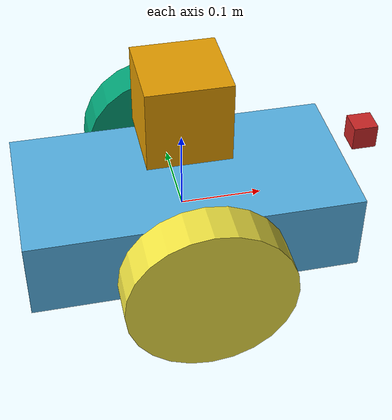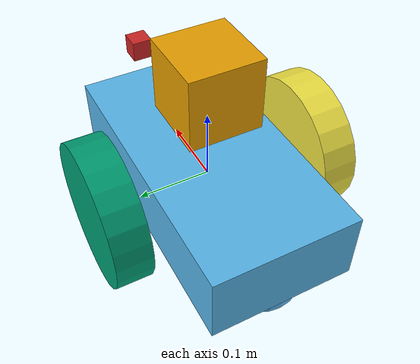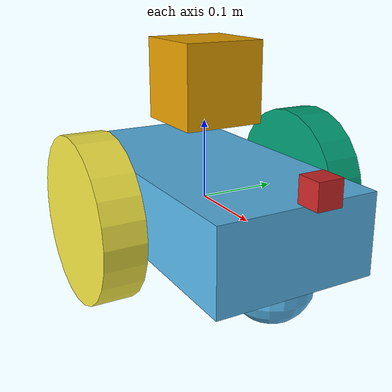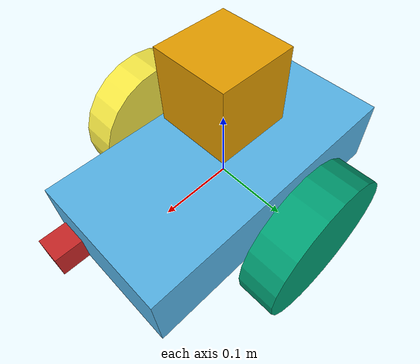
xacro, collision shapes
<?xml version='1.0'?>

<robot name="bumperbot" xmlns:xacro="http://www.ros.org/wiki/xacro">

  <!-- STEP 5 - Gazebo plugin -->
  <xacro:include filename="$(find bumperbot_description)/urdf/bumperbot.gazebo" />

  <!-- STEP 4 - RViz colors -->
  <xacro:include filename="$(find bumperbot_description)/urdf/materials.xacro" />

  <!-- STEP 1 - Robot footprint -->
  <link name="base_footprint"></link>

  <!-- STEP 2 - Robot chassis = base_link -->
  <joint name="base_footprint_joint" type="fixed">
    <origin xyz="0 0 0" rpy="0 0 0" />
    <parent link="base_footprint"/>
    <child link="base_link" />
  </joint>

  <link name='base_link'>
    <pose>0 0 0.1 0 0 0</pose>

    <inertial>
      <mass value="15.0"/>
      <origin xyz="0.0 0 0" rpy=" 0 0 0"/>
      <inertia
          ixx="0.0625" ixy="0" ixz="0"
          iyy="0.2125" iyz="0"
          izz="0.25"
      />
    </inertial>

    <collision name='collision'>
      <origin xyz="0 0 0" rpy=" 0 0 0"/>
      <geometry>
        <box size=".4 .2 .1"/>
      </geometry>
    </collision>

    <visual name='base_link_visual'>
      <origin xyz="0 0 0" rpy=" 0 0 0"/>
      <geometry>
        <mesh filename="package://bumperbot_description/meshes/bumperbot.dae" />
      </geometry>
    </visual>

    <collision name='rear_caster_collision'>
      <origin xyz="-0.15 0 -0.05" rpy=" 0 0 0"/>
      <geometry>
        <sphere radius="0.0499"/>
      </geometry>
    </collision>

    <visual name='rear_caster_visual'>
      <origin xyz="-0.15 0 -0.05" rpy=" 0 0 0"/>
      <geometry>
        <sphere radius="0.05"/>
      </geometry>
    </visual>

    <collision name='front_caster_collision'>
      <origin xyz="0.15 0 -0.05" rpy=" 0 0 0"/>
      <geometry>
        <sphere radius="0.0499"/>
      </geometry>
    </collision>

    <visual name='front_caster_visual'>
      <origin xyz="0.15 0 -0.05" rpy=" 0 0 0"/>
      <geometry>
        <sphere radius="0.05"/>
      </geometry>
    </visual>

  </link>

  <!-- STEP 3 - Wheels -->
  <joint type="continuous" name="left_wheel_joint">
    <origin xyz="0 0.15 0" rpy="0 0 0"/>
    <child link="left_wheel"/>
    <parent link="base_link"/>
    <axis xyz="0 1 0" rpy="0 0 0"/>
    <limit effort="100" velocity="10"/>
    <dynamics damping="1.0" friction="1.0"/>
  </joint>

  <link name='left_wheel'>
    <inertial>
      <mass value="5.0"/>
      <origin xyz="0 0 0" rpy="0 1.5707 1.5707"/>
      <inertia
          ixx="0.014" ixy="0" ixz="0"
          iyy="0.014" iyz="0"
          izz="0.025"
      />
    </inertial>

    <collision>
      <origin xyz="0 0 0" rpy="0 1.5707 1.5707"/>
      <geometry>
        <cylinder radius=".1" length=".05"/>
      </geometry>
    </collision>

    <visual name='left_wheel_visual'>
      <origin xyz="0 0 0" rpy="0 1.5707 1.5707"/>
      <geometry>
        <mesh filename = "package://bumperbot_description/meshes/wheel.dae"/>
      </geometry>
    </visual>
  </link>

  <joint type="continuous" name="right_wheel_joint">
    <origin xyz="0 -0.15 0" rpy="0 0 0"/>
    <child link="right_wheel"/>
    <parent link="base_link"/>
    <axis xyz="0 1 0" rpy="0 0 0"/>
    <limit effort="100" velocity="10"/>
    <dynamics damping="1.0" friction="1.0"/>
  </joint>

  <link name='right_wheel'>
    <inertial>
      <mass value="5.0"/>
      <origin xyz="0 0 0" rpy="0 1.5707 1.5707"/>
      <inertia
          ixx="0.014" ixy="0" ixz="0"
          iyy="0.014" iyz="0"
          izz="0.025"
      />
    </inertial>

    <collision>
      <origin xyz="0 0 0" rpy="0 1.5707 1.5707"/>
      <geometry>
        <cylinder radius=".1" length=".05"/>
      </geometry>
    </collision>

    <visual name='right_wheel_visual'>
      <origin xyz="0 0 0" rpy="0 1.5707 1.5707"/>
      <geometry>
        <mesh filename = "package://bumperbot_description/meshes/wheel.dae"/>
      </geometry>
    </visual>
  </link>

  <!-- STEP 6 - Gazebo frictions and colors -->
  <gazebo reference="left_wheel">
    <mu1>0.2</mu1>
    <mu2>0.2</mu2>
    <kp>1000000.0</kp>
    <kd>100.0</kd>
    <minDepth>0.0001</minDepth>
    <maxVel>1.0</maxVel>
  </gazebo>

  <gazebo reference="right_wheel">
    <mu1>0.2</mu1>
    <mu2>0.2</mu2>
    <kp>1000000.0</kp>
    <kd>100.0</kd>
    <minDepth>0.0001</minDepth>
    <maxVel>1.0</maxVel>
  </gazebo>

  <gazebo reference="base_link">
    <mu1>0.000002</mu1>
    <mu2>0.000002</mu2>
  </gazebo>

  <!-- STEP 7 - Camera -->
  <joint type="fixed" name="camera_joint">
    <origin xyz="0.225 0 0.075" rpy="0 0 0"/>
    <child link="camera_link"/>
    <parent link="base_link"/>
    <axis xyz="0 1 0" />
  </joint>

  <link name='camera_link'>
    <pose>0 0 0 0 0 0</pose>
    <inertial>
      <mass value="0.1"/>
      <origin xyz="0 0 0" rpy="0 0 0"/>
      <inertia
          ixx="1e-6" ixy="0" ixz="0"
          iyy="1e-6" iyz="0"
          izz="1e-6"
      />
    </inertial>

    <collision name='collision'>
      <origin xyz="0 0 0" rpy="0 0 0"/>
      <geometry>
        <box size=".03 .03 .03"/>
      </geometry>
    </collision>

    <visual name='camera_link_visual'>
      <origin xyz="0 0 0" rpy="0 0 0"/>
      <geometry>
        <box size=".03 .03 .03"/>
      </geometry>
    </visual>

  </link>

  <gazebo reference="camera_link">
    <material>Gazebo/Red</material>
  </gazebo>

  <joint type="fixed" name="camera_optical_joint">
    <origin xyz="0 0 0" rpy="-1.5707 0 -1.5707"/>
    <child link="camera_link_optical"/>
    <parent link="camera_link"/>
  </joint>

  <link name="camera_link_optical">
  </link>

  <!-- STEP 8 - IMU -->
  <joint name="imu_joint" type="fixed">
    <origin xyz="0 0 0" rpy="0 0 0" />
    <parent link="base_link"/>
    <child link="imu_link" />
  </joint>

  <link name="imu_link">
  </link>

  <!-- STEP 9 - GPS -->
  <joint name="navsat_joint" type="fixed">
    <origin xyz="0 0 0" rpy="0 0 0" />
    <parent link="base_link"/>
    <child link="navsat_link" />
  </joint>

  <link name="navsat_link">
  </link>

  <!-- STEP 10 - Lidar -->
  <joint type="fixed" name="scan_joint">
    <origin xyz="0.0 0 0.15" rpy="0 0 0"/>
    <child link="scan_link"/>
    <parent link="base_link"/>
    <axis xyz="0 1 0" rpy="0 0 0"/>
  </joint>

  <link name='scan_link'>
    <inertial>
      <mass value="1e-5"/>
      <origin xyz="0 0 0" rpy="0 0 0"/>
      <inertia
          ixx="1e-6" ixy="0" ixz="0"
          iyy="1e-6" iyz="0"
          izz="1e-6"
      />
    </inertial>
    <collision name='collision'>
      <origin xyz="0 0 0" rpy="0 0 0"/>
      <geometry>
        <box size=".1 .1 .1"/>
      </geometry>
    </collision>

    <visual name='scan_link_visual'>
      <origin xyz="0 0 0" rpy="0 0 0"/>
      <geometry>
        <mesh filename = "package://bumperbot_description/meshes/lidar.dae"/>
      </geometry>
    </visual>

  </link>

  <gazebo reference="scan_link">
    <selfCollide>false</selfCollide>
    <mu1 value="0.05" />
    <mu2 value="0.05" />
  </gazebo>

</robot>
